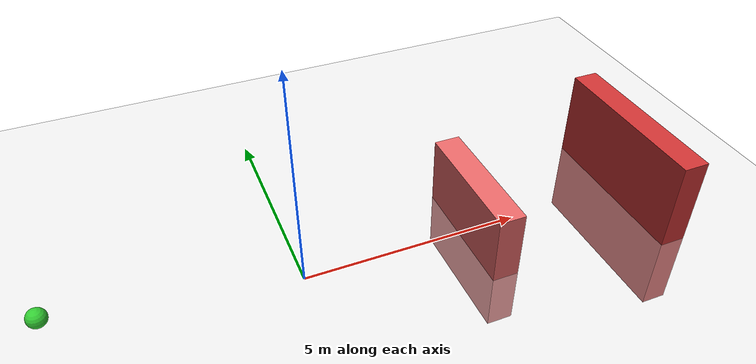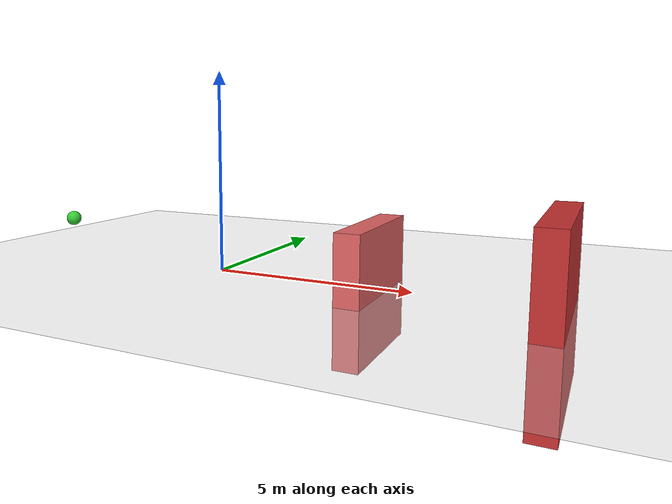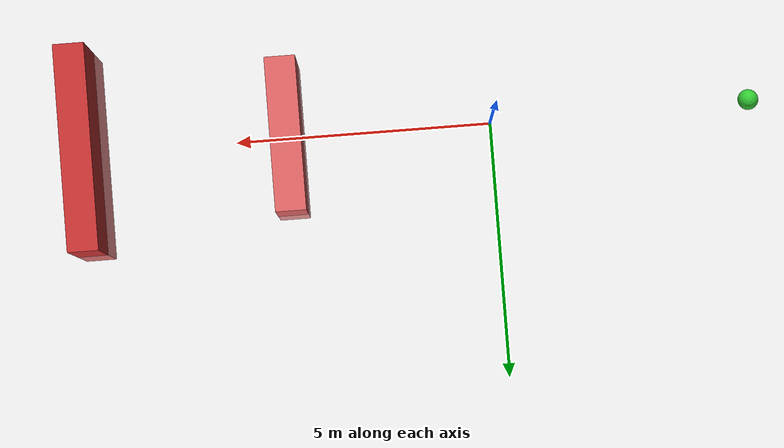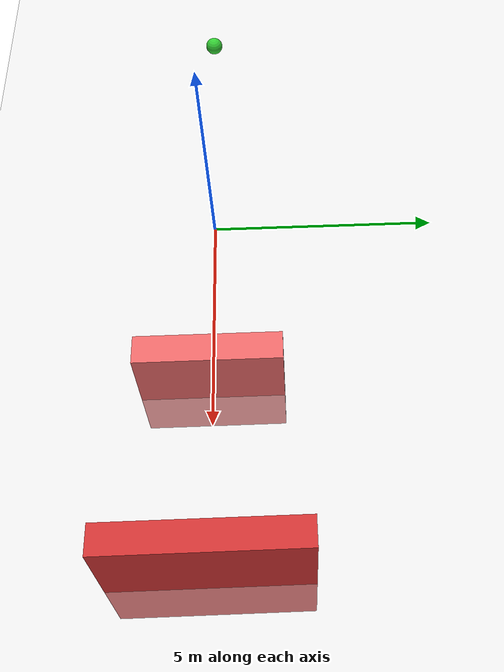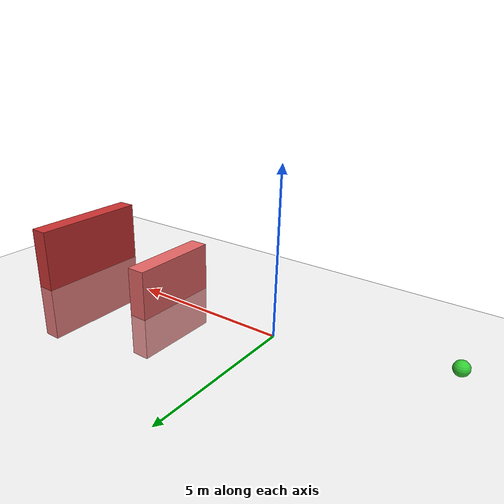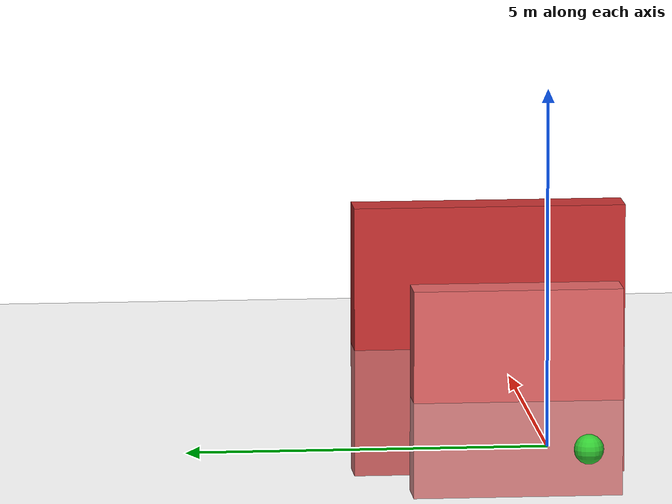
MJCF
<mujoco>
  <option gravity="0 0 -9.81"/>
  <worldbody>
    <body name="obstacle_1" pos="4 0 0">
      <geom type="box" size="0.3 1.5 1.5" rgba="0.9 0.4 0.4 1" friction="0.8 0.8 0.8"/>
    </body>
    <body name="obstacle_2" pos="8 0 0">
      <geom type="box" size="0.3 2 2" rgba="0.8 0.2 0.2 1" friction="0.8 0.8 0.8"/>
    </body>
    <body name="ground" pos="0 0 -0.1">
      <geom type="plane" size="30 30 0.1" rgba="0.85 0.85 0.85 1" friction="1 1 1"/>
    </body>
    <body name="projectile" pos="-5 0 1">
      <geom type="sphere" size="0.2" density="1" rgba="0.2 0.8 0.2 1"/>
      <joint type="free"/>
    </body>
  </worldbody>
</mujoco>
